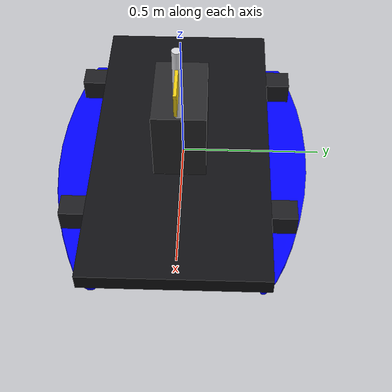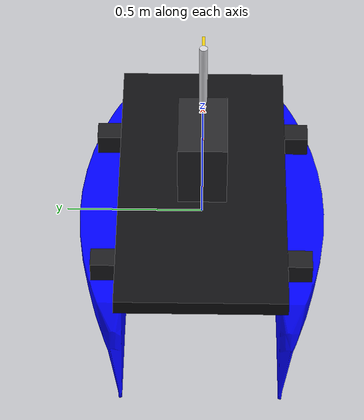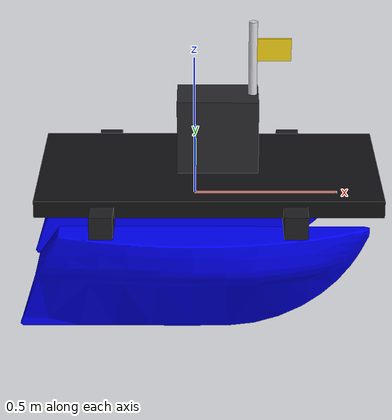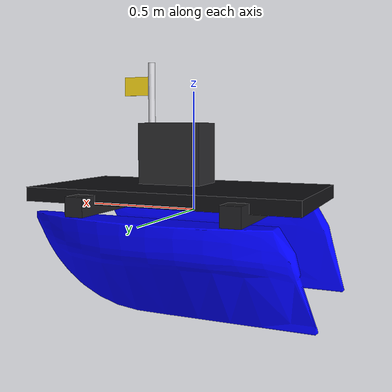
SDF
<sdf version="1.9">
  <model name="ourboat">
    <link name="base_link">
      <inertial>
        <pose>-0.05 0 -0.15 0 0 0</pose>
        <mass>30.0</mass>
        <inertia>
          <ixx>2.42369</ixx>
          <ixy>0</ixy>
          <ixz>0</ixz>
          <iyy>3.9235025</iyy>
          <iyz>0</iyz>
          <izz>5.6403125</izz>
        </inertia>
      </inertial>
      <collision name="hull_collision">
        <geometry>
          <mesh>
            <uri>models://ourboat/meshes/blueboat_hull_collision.stl</uri>
          </mesh>
        </geometry>
      </collision>
      <visual name="hull_visual">
        <geometry>
          <mesh>
            <uri>models://ourboat/meshes/blueboat_hull_collision.stl</uri>
          </mesh>
        </geometry>
        <material>
          <diffuse>0 0 1 1</diffuse>
          <ambient>1 0 1 1</ambient>
          <specular>0.7 0.7 0.7 1</specular>
          <pbr>
            <metal>
              <metalness>0.5</metalness>
              <roughness>0.5</roughness>
            </metal>
          </pbr>
        </material>
      </visual>
      <!-- Safe primitive visuals restore the missing bridge/deck silhouette
           without relying on the crash-prone COLLADA meshes. -->
      <visual name="deck_visual">
        <pose>0.05 0 0.07 0 0 0</pose>
        <geometry>
          <box>
            <size>1.18 0.62 0.06</size>
          </box>
        </geometry>
        <material>
          <diffuse>0.07 0.07 0.08 1</diffuse>
          <ambient>0.07 0.07 0.08 1</ambient>
          <specular>0.2 0.2 0.2 1</specular>
          <pbr>
            <metal>
              <metalness>0.3</metalness>
              <roughness>0.75</roughness>
            </metal>
          </pbr>
        </material>
      </visual>
      <visual name="fore_crossbeam_visual">
        <pose>0.34 0 0.04 0 0 0</pose>
        <geometry>
          <box>
            <size>0.08 0.80 0.08</size>
          </box>
        </geometry>
        <material>
          <diffuse>0.12 0.12 0.13 1</diffuse>
          <ambient>0.12 0.12 0.13 1</ambient>
          <specular>0.2 0.2 0.2 1</specular>
          <pbr>
            <metal>
              <metalness>0.6</metalness>
              <roughness>0.45</roughness>
            </metal>
          </pbr>
        </material>
      </visual>
      <visual name="aft_crossbeam_visual">
        <pose>-0.31 0 0.04 0 0 0</pose>
        <geometry>
          <box>
            <size>0.08 0.80 0.08</size>
          </box>
        </geometry>
        <material>
          <diffuse>0.12 0.12 0.13 1</diffuse>
          <ambient>0.12 0.12 0.13 1</ambient>
          <specular>0.2 0.2 0.2 1</specular>
          <pbr>
            <metal>
              <metalness>0.6</metalness>
              <roughness>0.45</roughness>
            </metal>
          </pbr>
        </material>
      </visual>
      <visual name="console_visual">
        <pose>0.08 0 0.24 0 0 0</pose>
        <geometry>
          <box>
            <size>0.28 0.18 0.26</size>
          </box>
        </geometry>
        <material>
          <diffuse>0.16 0.16 0.17 1</diffuse>
          <ambient>0.16 0.16 0.17 1</ambient>
          <specular>0.25 0.25 0.25 1</specular>
          <pbr>
            <metal>
              <metalness>0.4</metalness>
              <roughness>0.55</roughness>
            </metal>
          </pbr>
        </material>
      </visual>
      <visual name="mast_visual">
        <pose>0.2 0 0.42 0 0 0</pose>
        <geometry>
          <cylinder>
            <radius>0.015</radius>
            <length>0.42</length>
          </cylinder>
        </geometry>
        <material>
          <diffuse>0.85 0.85 0.87 1</diffuse>
          <ambient>0.85 0.85 0.87 1</ambient>
          <specular>0.3 0.3 0.3 1</specular>
        </material>
      </visual>
      <visual name="flag_visual_safe">
        <pose>0.27 0 0.53 0 0 0</pose>
        <geometry>
          <box>
            <size>0.12 0.01 0.08</size>
          </box>
        </geometry>
        <material>
          <diffuse>0.95 0.82 0.08 1</diffuse>
          <ambient>0.95 0.82 0.08 1</ambient>
          <specular>0.1 0.1 0.1 1</specular>
        </material>
      </visual>
      <!-- DAE visuals commented out due to ColladaLoader crash - hull STL provides basic visualization -->
    </link>

    <link name="motor_stbd_link">
      <pose degrees="true">-0.488 -0.295 -0.272 -90 0 90</pose>
      <inertial>
        <mass>0.2</mass>
        <inertia>
          <ixx>0.1</ixx>
          <ixy>0</ixy>
          <ixz>0</ixz>
          <iyy>0.1</iyy>
          <iyz>0</iyz>
          <izz>0.1</izz>
        </inertia>
      </inertial>
      <!-- prop collision/visual commented out due to ColladaLoader crash -->
    </link>
    <joint name="motor_stbd_joint" type="revolute">
      <parent>base_link</parent>
      <child>motor_stbd_link</child>
      <axis>
        <xyz>0 0 -1</xyz>
        <limit>
          <lower>-1e16</lower>
          <upper>1e16</upper>
        </limit>
        <dynamics>
          <damping>0.02</damping>
        </dynamics>
      </axis>
    </joint>

    <link name="motor_port_link">
      <pose degrees="true">-0.488 0.295 -0.272 -90 0 90</pose>
      <inertial>
        <mass>0.2</mass>
        <inertia>
          <ixx>0.1</ixx>
          <ixy>0</ixy>
          <ixz>0</ixz>
          <iyy>0.1</iyy>
          <iyz>0</iyz>
          <izz>0.1</izz>
        </inertia>
      </inertial>
      <!-- prop collision/visual commented out due to ColladaLoader crash -->
    </link>
    <joint name="motor_port_joint" type="revolute">
      <parent>base_link</parent>
      <child>motor_port_link</child>
      <axis>
        <xyz>0 0 -1</xyz>
        <limit>
          <lower>-1e16</lower>
          <upper>1e16</upper>
        </limit>
        <dynamics>
          <damping>0.02</damping>
        </dynamics>
      </axis>
    </joint>

    <!-- sensors -->
    <link name="imu_link">
      <inertial>
        <pose>0 0 0 0 0 0</pose>
        <mass>0.1</mass>
        <inertia>
          <ixx>0.0001</ixx>
          <ixy>0</ixy>
          <ixz>0</ixz>
          <iyy>0.0001</iyy>
          <iyz>0</iyz>
          <izz>0.0001</izz>
        </inertia>
      </inertial>
      <sensor name="imu_sensor" type="imu">
        <pose degrees="true">0 0 0 180 0 0</pose>
        <always_on>1</always_on>
        <update_rate>1000.0</update_rate>
      </sensor>
    </link>
    <joint name="imu_joint" type="revolute">
      <child>imu_link</child>
      <parent>base_link</parent>
      <axis>
        <xyz>0 0 1</xyz>
        <limit>
          <lower>0</lower>
          <upper>0</upper>
        </limit>
        <dynamics>
          <damping>1.0</damping>
        </dynamics>
      </axis>
    </joint>

    <link name="lidar_link">
      <inertial>
        <pose>0 0 0 0 0 0</pose>
        <mass>0.1</mass>
        <inertia>
          <ixx>0.0001</ixx>
          <ixy>0</ixy>
          <ixz>0</ixz>
          <iyy>0.0001</iyy>
          <iyz>0</iyz>
          <izz>0.0001</izz>
        </inertia>
      </inertial>
      <sensor name="lidar" type="gpu_lidar">
        <!-- 30 deg down (was 15 deg): pitch -0.5236 rad -->
        <pose>0.3 0 0.2 -0.5236 0 -1.59</pose>
        <always_on>1</always_on>
        <update_rate>10.0</update_rate>
	<topic>lidar_topic</topic>
	<visualize>true</visualize>
	<lidar>
		<scan>
			<horizontal>
				<samples>720</samples>
				<resolution>1</resolution>
				<min_angle>-3.14</min_angle>
				<max_angle>3.14</max_angle>
			</horizontal>
			<vertical>
				<samples>360</samples>
				<resolution>1</resolution>
				<min_angle>0</min_angle>
				<max_angle>3.14</max_angle>
			</vertical>
		</scan>
		<range>
			<min>0.15</min>
			<max>15</max>
		</range>
	</lidar>
      </sensor>
    </link>
    <joint name="lidar_joint" type="fixed">
      <child>lidar_link</child>
      <parent>base_link</parent>
    </joint>
    <link name="camera1_link">
      <inertial>
        <pose>0 0 0 0 0 0</pose>
        <mass>0.1</mass>
        <inertia>
          <ixx>0.0001</ixx>
          <ixy>0</ixy>
          <ixz>0</ixz>
          <iyy>0.0001</iyy>
          <iyz>0</iyz>
          <izz>0.0001</izz>
        </inertia>
      </inertial>
      <!-- Left camera: 70 deg left → bridge maps to /camera0/image_raw -->
      <sensor name="camera1" type="camera">
        <pose>0.3 0 0.2 0 0 -1.22173</pose>
        <always_on>1</always_on>
        <update_rate>30.0</update_rate>
	<topic>camera1_topic</topic>
	<visualize>true</visualize>
	<camera>
		<horizontal_fov>1.484</horizontal_fov>
		<image>
			<width>1920</width>
			<height>1200</height>
		</image>
		<clip>
			<near>0.05</near>
			<far>1000</far>
		</clip>
	</camera>
      </sensor>
    </link>
    <joint name="camera1_joint" type="fixed">
      <child>camera1_link</child>
      <parent>base_link</parent>
    </joint>
    <link name="camera2_link">
      <inertial>
        <pose>0 0 0 0 0 0</pose>
        <mass>0.1</mass>
        <inertia>
          <ixx>0.0001</ixx>
          <ixy>0</ixy>
          <ixz>0</ixz>
          <iyy>0.0001</iyy>
          <iyz>0</iyz>
          <izz>0.0001</izz>
        </inertia>
      </inertial>
      <!-- Center camera → bridge maps to /camera1/image_raw -->
      <sensor name="camera2" type="camera">
        <pose>0.3 0 0.2 0 0 0</pose>
        <always_on>1</always_on>
        <update_rate>30.0</update_rate>
	<topic>camera2_topic</topic>
	<visualize>true</visualize>
	<camera>
		<horizontal_fov>1.484</horizontal_fov>
		<image>
			<width>1920</width>
			<height>1200</height>
		</image>
		<clip>
			<near>0.05</near>
			<far>1000</far>
		</clip>
	</camera>
      </sensor>
    </link>
    <joint name="camera2_joint" type="fixed">
      <child>camera2_link</child>
      <parent>base_link</parent>
    </joint>
    <link name="camera3_link">
      <inertial>
        <pose>0 0 0 0 0 0</pose>
        <mass>0.1</mass>
        <inertia>
          <ixx>0.0001</ixx>
          <ixy>0</ixy>
          <ixz>0</ixz>
          <iyy>0.0001</iyy>
          <iyz>0</iyz>
          <izz>0.0001</izz>
        </inertia>
      </inertial>
      <!-- Right camera: 70 deg right → bridge maps to /camera2/image_raw -->
      <sensor name="camera3" type="camera">
        <pose>0.3 0 0.2 0 0 1.22173</pose>
        <always_on>1</always_on>
        <update_rate>30.0</update_rate>
	<topic>camera3_topic</topic>
	<visualize>true</visualize>
	<camera>
		<horizontal_fov>1.484</horizontal_fov>
		<image>
			<width>1920</width>
			<height>1200</height>
		</image>
		<clip>
			<near>0.05</near>
			<far>1000</far>
		</clip>
	</camera>
      </sensor>
    </link>
    <joint name="camera3_joint" type="fixed">
      <child>camera3_link</child>
      <parent>base_link</parent>
    </joint>

    <!-- plugins -->
    <plugin name="gz::sim::systems::JointStatePublisher"
      filename="gz-sim-joint-state-publisher-system">
    </plugin>
    <plugin name="gz::sim::systems::OdometryPublisher"
      filename="gz-sim-odometry-publisher-system">
      <odom_frame>odom</odom_frame>
      <robot_base_frame>base_link</robot_base_frame>
      <dimensions>3</dimensions>
    </plugin>

    <!-- left motor thruster cw -->
    <plugin name="gz::sim::systems::Thruster"
      filename="gz-sim-thruster-system">
      <namespace>ourboat</namespace>
      <joint_name>motor_port_joint</joint_name>
      <thrust_coefficient>-0.02</thrust_coefficient>
      <fluid_density>1025</fluid_density>
      <propeller_diameter>0.112</propeller_diameter>
      <velocity_control>0</velocity_control>
      <use_angvel_cmd>0</use_angvel_cmd>
    </plugin>

    <!-- right motor thruster ccw -->
    <plugin name="gz::sim::systems::Thruster"
      filename="gz-sim-thruster-system">
      <namespace>ourboat</namespace>
      <joint_name>motor_stbd_joint</joint_name>
      <thrust_coefficient>0.02</thrust_coefficient>
      <fluid_density>1025</fluid_density>
      <propeller_diameter>0.112</propeller_diameter>
      <velocity_control>0</velocity_control>
      <use_angvel_cmd>0</use_angvel_cmd>
    </plugin>

    <!-- hydrodynamics plugin -->
    <plugin name="gz::sim::systems::Hydrodynamics"
        filename="gz-waves1-hydrodynamics-system">
        <enable>ourboat::base_link</enable>
        <hydrodynamics>
          <damping_on>1</damping_on>
          <viscous_drag_on>1</viscous_drag_on>
          <pressure_drag_on>1</pressure_drag_on>
        </hydrodynamics>
    </plugin>

      <!-- ardupilot plugin -->
    <plugin name="ArduPilotPlugin"
      filename="ArduPilotPlugin">
      <fdm_addr>127.0.0.1</fdm_addr>
      <fdm_port_in>9002</fdm_port_in>
      <connectionTimeoutMaxCount>5</connectionTimeoutMaxCount>
      <lock_step>1</lock_step>
      <gazeboXYZToNED degrees="true">0 0 0 180 0 90</gazeboXYZToNED>
      <modelXYZToAirplaneXForwardZDown degrees="true">0 0 0 180 0 0</modelXYZToAirplaneXForwardZDown>
      <imuName>imu_link::imu_sensor</imuName>

      <!--
        port motor cw

        SERVO1_FUNCTION 73 (ThrottleLeft)
        SERVO1_MAX 2000
        SERVO1_MIN 1000
      -->
      <control channel="0">
        <jointName>motor_port_joint</jointName>
        <multiplier>70</multiplier>
        <offset>-0.5</offset>
        <servo_min>1000</servo_min>
        <servo_max>2000</servo_max>
        <type>COMMAND</type>
        <cmd_topic>/model/ourboat/joint/motor_port_joint/cmd_thrust</cmd_topic>
      </control>

      <!--
        stbd motor ccw

        SERVO3_FUNCTION 74 (ThrottleRight)
        SERVO3_MAX 2000
        SERVO3_MIN 1000
      -->
      <control channel="2">
        <jointName>motor_stbd_joint</jointName>
        <multiplier>70</multiplier>
        <offset>-0.5</offset>
        <servo_min>1000</servo_min>
        <servo_max>2000</servo_max>
        <type>COMMAND</type>
        <cmd_topic>/model/ourboat/joint/motor_stbd_joint/cmd_thrust</cmd_topic>
      </control>
    </plugin>

  </model>
</sdf>
